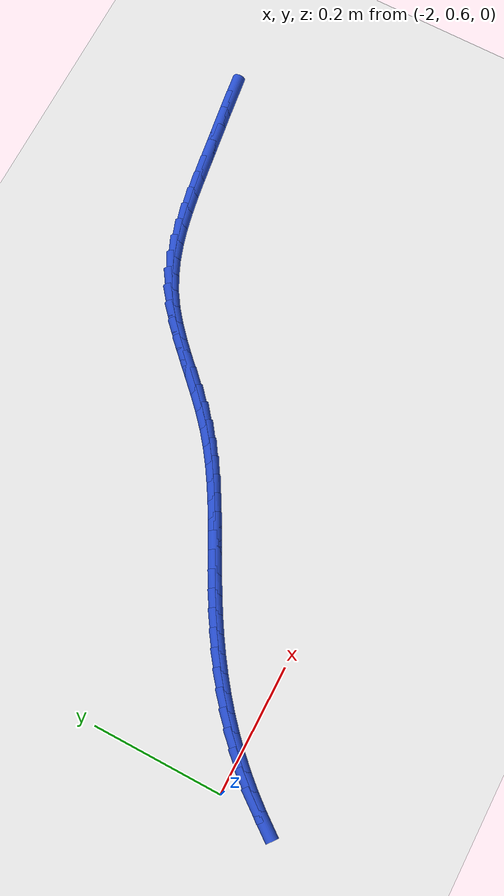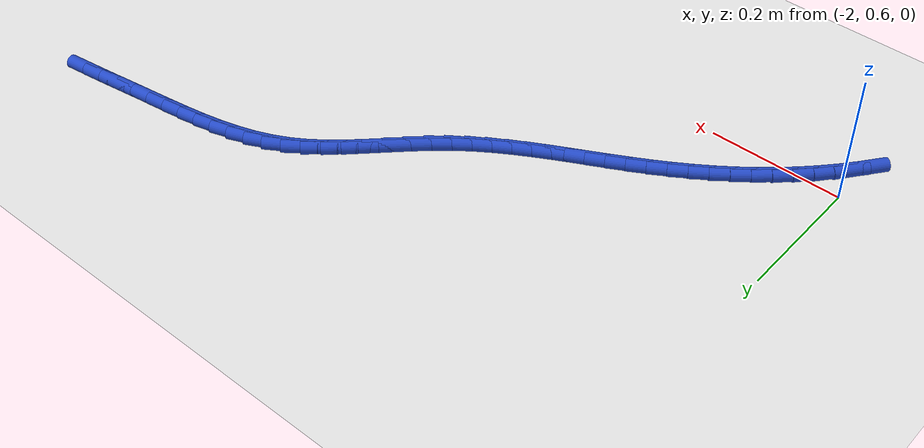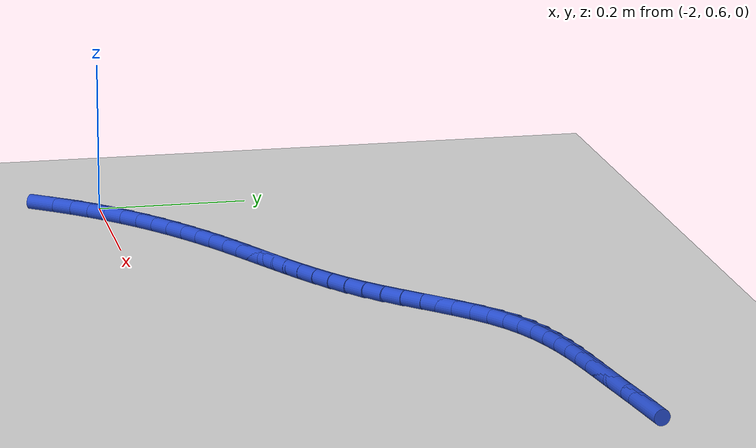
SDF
<sdf version="1.6">
 <world name="default">
  <model name="ground_plane">
   <static>1</static>
   <link name="link">
    <collision name="collision">
     <geometry><plane><normal>0 0 1</normal><size>100 100</size></plane></geometry>
     <surface><friction><ode><mu>100</mu><mu2>50</mu2></ode></friction></surface>
    </collision>
    <visual name="visual">
     <cast_shadows>0</cast_shadows>
     <geometry><plane><normal>0 0 1</normal><size>100 100</size></plane></geometry>
     <material>
      <script><uri>file://media/materials/scripts/gazebo.material</uri><name>Gazebo/WhiteGlow</name></script>
     </material>
    </visual>
   </link>
  </model>
  <model name="line">
   <link name="link_59">
    <pose>-1.0376944548410938 1.0877962690633303 0.01 0 1.57 0.1334954730307414</pose>
    <collision name="collision">
     <geometry><cylinder><radius>0.01</radius><length>0.08</length></cylinder></geometry>
    </collision>
    <visual name="visual">
     <material>
      <script><name>Gazebo/Blue</name><uri>file://media/materials/scripts/gazebo.material</uri></script>
     </material>
     <geometry><cylinder><radius>0.01</radius><length>0.08</length></cylinder></geometry>
    </visual>
   </link>
   <link name="link_60">
    <pose>-1.0684057628495305 1.0836719192465762 0.01 0 1.57 0.14330484486759168</pose>
    <collision name="collision">
     <geometry><cylinder><radius>0.01</radius><length>0.08</length></cylinder></geometry>
    </collision>
    <visual name="visual">
     <material>
      <script><name>Gazebo/Blue</name><uri>file://media/materials/scripts/gazebo.material</uri></script>
     </material>
     <geometry><cylinder><radius>0.01</radius><length>0.08</length></cylinder></geometry>
    </visual>
   </link>
   <link name="link_61">
    <pose>-1.0990560884617087 1.0792492625896357 0.01 0 1.57 0.14575799966463604</pose>
    <collision name="collision">
     <geometry><cylinder><radius>0.01</radius><length>0.08</length></cylinder></geometry>
    </collision>
    <visual name="visual">
     <material>
      <script><name>Gazebo/Blue</name><uri>file://media/materials/scripts/gazebo.material</uri></script>
     </material>
     <geometry><cylinder><radius>0.01</radius><length>0.08</length></cylinder></geometry>
    </visual>
   </link>
   <link name="link_62">
    <pose>-1.1294826973099303 1.0747826645088026 0.01 0 1.57 0.14203251685983956</pose>
    <collision name="collision">
     <geometry><cylinder><radius>0.01</radius><length>0.08</length></cylinder></geometry>
    </collision>
    <visual name="visual">
     <material>
      <script><name>Gazebo/Blue</name><uri>file://media/materials/scripts/gazebo.material</uri></script>
     </material>
     <geometry><cylinder><radius>0.01</radius><length>0.08</length></cylinder></geometry>
    </visual>
   </link>
   <link name="link_63">
    <pose>-1.1595283705377428 1.070486272278852 0.01 0 1.57 0.14298898115756992</pose>
    <collision name="collision">
     <geometry><cylinder><radius>0.01</radius><length>0.08</length></cylinder></geometry>
    </collision>
    <visual name="visual">
     <material>
      <script><name>Gazebo/Blue</name><uri>file://media/materials/scripts/gazebo.material</uri></script>
     </material>
     <geometry><cylinder><radius>0.01</radius><length>0.08</length></cylinder></geometry>
    </visual>
   </link>
   <link name="link_64">
    <pose>-1.1890829248731665 1.0662312579347422 0.01 0 1.57 0.15460730312139717</pose>
    <collision name="collision">
     <geometry><cylinder><radius>0.01</radius><length>0.08</length></cylinder></geometry>
    </collision>
    <visual name="visual">
     <material>
      <script><name>Gazebo/Blue</name><uri>file://media/materials/scripts/gazebo.material</uri></script>
     </material>
     <geometry><cylinder><radius>0.01</radius><length>0.08</length></cylinder></geometry>
    </visual>
   </link>
   <link name="link_65">
    <pose>-1.2180599903508489 1.0617151510523783 0.01 0 1.57 0.17756633891431411</pose>
    <collision name="collision">
     <geometry><cylinder><radius>0.01</radius><length>0.08</length></cylinder></geometry>
    </collision>
    <visual name="visual">
     <material>
      <script><name>Gazebo/Blue</name><uri>file://media/materials/scripts/gazebo.material</uri></script>
     </material>
     <geometry><cylinder><radius>0.01</radius><length>0.08</length></cylinder></geometry>
    </visual>
   </link>
   <link name="link_66">
    <pose>-1.246373382038112 1.0566341319818258 0.01 0 1.57 0.2125940894117049</pose>
    <collision name="collision">
     <geometry><cylinder><radius>0.01</radius><length>0.08</length></cylinder></geometry>
    </collision>
    <visual name="visual">
     <material>
      <script><name>Gazebo/Blue</name><uri>file://media/materials/scripts/gazebo.material</uri></script>
     </material>
     <geometry><cylinder><radius>0.01</radius><length>0.08</length></cylinder></geometry>
    </visual>
   </link>
   <link name="link_67">
    <pose>-1.2739369150022763 1.0506843810731485 0.01 0 1.57 0.26042674896760604</pose>
    <collision name="collision">
     <geometry><cylinder><radius>0.01</radius><length>0.08</length></cylinder></geometry>
    </collision>
    <visual name="visual">
     <material>
      <script><name>Gazebo/Blue</name><uri>file://media/materials/scripts/gazebo.material</uri></script>
     </material>
     <geometry><cylinder><radius>0.01</radius><length>0.08</length></cylinder></geometry>
    </visual>
   </link>
   <link name="link_68">
    <pose>-1.300664404310664 1.043562078676412 0.01 0 1.57 0.32164312924781424</pose>
    <collision name="collision">
     <geometry><cylinder><radius>0.01</radius><length>0.08</length></cylinder></geometry>
    </collision>
    <visual name="visual">
     <material>
      <script><name>Gazebo/Blue</name><uri>file://media/materials/scripts/gazebo.material</uri></script>
     </material>
     <geometry><cylinder><radius>0.01</radius><length>0.08</length></cylinder></geometry>
    </visual>
   </link>
   <link name="link_69">
    <pose>-1.326469665030597 1.034963405141681 0.01 0 1.57 0.3963997188025557</pose>
    <collision name="collision">
     <geometry><cylinder><radius>0.01</radius><length>0.08</length></cylinder></geometry>
    </collision>
    <visual name="visual">
     <material>
      <script><name>Gazebo/Blue</name><uri>file://media/materials/scripts/gazebo.material</uri></script>
     </material>
     <geometry><cylinder><radius>0.01</radius><length>0.08</length></cylinder></geometry>
    </visual>
   </link>
   <link name="link_70">
    <pose>-1.3512665122293972 1.0245845408190208 0.01 0 1.57 0.4840816189618638</pose>
    <collision name="collision">
     <geometry><cylinder><radius>0.01</radius><length>0.08</length></cylinder></geometry>
    </collision>
    <visual name="visual">
     <material>
      <script><name>Gazebo/Blue</name><uri>file://media/materials/scripts/gazebo.material</uri></script>
     </material>
     <geometry><cylinder><radius>0.01</radius><length>0.08</length></cylinder></geometry>
    </visual>
   </link>
   <link name="link_71">
    <pose>-1.3749687609743855 1.012121666058496 0.01 0 1.57 0.5807861027989323</pose>
    <collision name="collision">
     <geometry><cylinder><radius>0.01</radius><length>0.08</length></cylinder></geometry>
    </collision>
    <visual name="visual">
     <material>
      <script><name>Gazebo/Blue</name><uri>file://media/materials/scripts/gazebo.material</uri></script>
     </material>
     <geometry><cylinder><radius>0.01</radius><length>0.08</length></cylinder></geometry>
    </visual>
   </link>
   <link name="link_72">
    <pose>-1.39751430096481 0.9973251958567998 0.01 0 1.57 0.6645909405233154</pose>
    <collision name="collision">
     <geometry><cylinder><radius>0.01</radius><length>0.08</length></cylinder></geometry>
    </collision>
    <visual name="visual">
     <material>
      <script><name>Gazebo/Blue</name><uri>file://media/materials/scripts/gazebo.material</uri></script>
     </material>
     <geometry><cylinder><radius>0.01</radius><length>0.08</length></cylinder></geometry>
    </visual>
   </link>
   <link name="link_73">
    <pose>-1.4190618301741929 0.9804429758157717 0.01 0 1.57 0.7250321027307001</pose>
    <collision name="collision">
     <geometry><cylinder><radius>0.01</radius><length>0.08</length></cylinder></geometry>
    </collision>
    <visual name="visual">
     <material>
      <script><name>Gazebo/Blue</name><uri>file://media/materials/scripts/gazebo.material</uri></script>
     </material>
     <geometry><cylinder><radius>0.01</radius><length>0.08</length></cylinder></geometry>
    </visual>
   </link>
   <link name="link_74">
    <pose>-1.4398887000804155 0.9619901507798673 0.01 0 1.57 0.7633668413979282</pose>
    <collision name="collision">
     <geometry><cylinder><radius>0.01</radius><length>0.08</length></cylinder></geometry>
    </collision>
    <visual name="visual">
     <material>
      <script><name>Gazebo/Blue</name><uri>file://media/materials/scripts/gazebo.material</uri></script>
     </material>
     <geometry><cylinder><radius>0.01</radius><length>0.08</length></cylinder></geometry>
    </visual>
   </link>
   <link name="link_75">
    <pose>-1.460273400890601 0.9424844308904174 0.01 0 1.57 0.7809245543680977</pose>
    <collision name="collision">
     <geometry><cylinder><radius>0.01</radius><length>0.08</length></cylinder></geometry>
    </collision>
    <visual name="visual">
     <material>
      <script><name>Gazebo/Blue</name><uri>file://media/materials/scripts/gazebo.material</uri></script>
     </material>
     <geometry><cylinder><radius>0.01</radius><length>0.08</length></cylinder></geometry>
    </visual>
   </link>
   <link name="link_76">
    <pose>-1.4804944228118742 0.9224435262887514 0.01 0 1.57 0.7785296125036536</pose>
    <collision name="collision">
     <geometry><cylinder><radius>0.01</radius><length>0.08</length></cylinder></geometry>
    </collision>
    <visual name="visual">
     <material>
      <script><name>Gazebo/Blue</name><uri>file://media/materials/scripts/gazebo.material</uri></script>
     </material>
     <geometry><cylinder><radius>0.01</radius><length>0.08</length></cylinder></geometry>
    </visual>
   </link>
   <link name="link_77">
    <pose>-1.5008302560513567 0.9023851471161988 0.01 0 1.57 0.7563403165326268</pose>
    <collision name="collision">
     <geometry><cylinder><radius>0.01</radius><length>0.08</length></cylinder></geometry>
    </collision>
    <visual name="visual">
     <material>
      <script><name>Gazebo/Blue</name><uri>file://media/materials/scripts/gazebo.material</uri></script>
     </material>
     <geometry><cylinder><radius>0.01</radius><length>0.08</length></cylinder></geometry>
    </visual>
   </link>
   <link name="link_78">
    <pose>-1.5215593908161733 0.882827003514089 0.01 0 1.57 0.7139247877903906</pose>
    <collision name="collision">
     <geometry><cylinder><radius>0.01</radius><length>0.08</length></cylinder></geometry>
    </collision>
    <visual name="visual">
     <material>
      <script><name>Gazebo/Blue</name><uri>file://media/materials/scripts/gazebo.material</uri></script>
     </material>
     <geometry><cylinder><radius>0.01</radius><length>0.08</length></cylinder></geometry>
    </visual>
   </link>
   <link name="link_79">
    <pose>-1.5429599202045285 0.8642860946094303 0.01 0 1.57 0.6583734830817721</pose>
    <collision name="collision">
     <geometry><cylinder><radius>0.01</radius><length>0.08</length></cylinder></geometry>
    </collision>
    <visual name="visual">
     <material>
      <script><name>Gazebo/Blue</name><uri>file://media/materials/scripts/gazebo.material</uri></script>
     </material>
     <geometry><cylinder><radius>0.01</radius><length>0.08</length></cylinder></geometry>
    </visual>
   </link>
   <link name="link_80">
    <pose>-1.565200300263476 0.847083116928187 0.01 0 1.57 0.6082113104159013</pose>
    <collision name="collision">
     <geometry><cylinder><radius>0.01</radius><length>0.08</length></cylinder></geometry>
    </collision>
    <visual name="visual">
     <material>
      <script><name>Gazebo/Blue</name><uri>file://media/materials/scripts/gazebo.material</uri></script>
     </material>
     <geometry><cylinder><radius>0.01</radius><length>0.08</length></cylinder></geometry>
    </visual>
   </link>
   <link name="link_81">
    <pose>-1.5881905058168513 0.8310759623522161 0.01 0 1.57 0.5665418743031984</pose>
    <collision name="collision">
     <geometry><cylinder><radius>0.01</radius><length>0.08</length></cylinder></geometry>
    </collision>
    <visual name="visual">
     <material>
      <script><name>Gazebo/Blue</name><uri>file://media/materials/scripts/gazebo.material</uri></script>
     </material>
     <geometry><cylinder><radius>0.01</radius><length>0.08</length></cylinder></geometry>
    </visual>
   </link>
   <link name="link_82">
    <pose>-1.6118032823021373 0.8160558644092963 0.01 0 1.57 0.5335887879607111</pose>
    <collision name="collision">
     <geometry><cylinder><radius>0.01</radius><length>0.08</length></cylinder></geometry>
    </collision>
    <visual name="visual">
     <material>
      <script><name>Gazebo/Blue</name><uri>file://media/materials/scripts/gazebo.material</uri></script>
     </material>
     <geometry><cylinder><radius>0.01</radius><length>0.08</length></cylinder></geometry>
    </visual>
   </link>
   <link name="link_83">
    <pose>-1.6359113751568182 0.8018140566272048 0.01 0 1.57 0.5094189261070686</pose>
    <collision name="collision">
     <geometry><cylinder><radius>0.01</radius><length>0.08</length></cylinder></geometry>
    </collision>
    <visual name="visual">
     <material>
      <script><name>Gazebo/Blue</name><uri>file://media/materials/scripts/gazebo.material</uri></script>
     </material>
     <geometry><cylinder><radius>0.01</radius><length>0.08</length></cylinder></geometry>
    </visual>
   </link>
   <link name="link_84">
    <pose>-1.66038752981838 0.7881417725337206 0.01 0 1.57 0.4940164376076443</pose>
    <collision name="collision">
     <geometry><cylinder><radius>0.01</radius><length>0.08</length></cylinder></geometry>
    </collision>
    <visual name="visual">
     <material>
      <script><name>Gazebo/Blue</name><uri>file://media/materials/scripts/gazebo.material</uri></script>
     </material>
     <geometry><cylinder><radius>0.01</radius><length>0.08</length></cylinder></geometry>
    </visual>
   </link>
   <link name="link_85">
    <pose>-1.6851044917243057 0.7748302456566213 0.01 0 1.57 0.4873385638721867</pose>
    <collision name="collision">
     <geometry><cylinder><radius>0.01</radius><length>0.08</length></cylinder></geometry>
    </collision>
    <visual name="visual">
     <material>
      <script><name>Gazebo/Blue</name><uri>file://media/materials/scripts/gazebo.material</uri></script>
     </material>
     <geometry><cylinder><radius>0.01</radius><length>0.08</length></cylinder></geometry>
    </visual>
   </link>
   <link name="link_86">
    <pose>-1.7099350063120788 0.7616707095236851 0.01 0 1.57 0.4893509785444931</pose>
    <collision name="collision">
     <geometry><cylinder><radius>0.01</radius><length>0.08</length></cylinder></geometry>
    </collision>
    <visual name="visual">
     <material>
      <script><name>Gazebo/Blue</name><uri>file://media/materials/scripts/gazebo.material</uri></script>
     </material>
     <geometry><cylinder><radius>0.01</radius><length>0.08</length></cylinder></geometry>
    </visual>
   </link>
   <link name="link_87">
    <pose>-1.7347518190191844 0.7484543976626903 0.01 0 1.57 0.5000428308767667</pose>
    <collision name="collision">
     <geometry><cylinder><radius>0.01</radius><length>0.08</length></cylinder></geometry>
    </collision>
    <visual name="visual">
     <material>
      <script><name>Gazebo/Blue</name><uri>file://media/materials/scripts/gazebo.material</uri></script>
     </material>
     <geometry><cylinder><radius>0.01</radius><length>0.08</length></cylinder></geometry>
    </visual>
   </link>
   <link name="link_88">
    <pose>-1.7594276752831066 0.734972543601415 0.01 0 1.57 0.5193824767309676</pose>
    <collision name="collision">
     <geometry><cylinder><radius>0.01</radius><length>0.08</length></cylinder></geometry>
    </collision>
    <visual name="visual">
     <material>
      <script><name>Gazebo/Blue</name><uri>file://media/materials/scripts/gazebo.material</uri></script>
     </material>
     <geometry><cylinder><radius>0.01</radius><length>0.08</length></cylinder></geometry>
    </visual>
   </link>
   <link name="link_89">
    <pose>-1.78383571410854 0.7210174388630552 0.01 0 1.57 0.5450853156954637</pose>
    <collision name="collision">
     <geometry><cylinder><radius>0.01</radius><length>0.08</length></cylinder></geometry>
    </collision>
    <visual name="visual">
     <material>
      <script><name>Gazebo/Blue</name><uri>file://media/materials/scripts/gazebo.material</uri></script>
     </material>
     <geometry><cylinder><radius>0.01</radius><length>0.08</length></cylinder></geometry>
    </visual>
   </link>
   <link name="link_90">
    <pose>-1.8078719125217473 0.7064427686071344 0.01 0 1.57 0.5736780438581209</pose>
    <collision name="collision">
     <geometry><cylinder><radius>0.01</radius><length>0.08</length></cylinder></geometry>
    </collision>
    <visual name="visual">
     <material>
      <script><name>Gazebo/Blue</name><uri>file://media/materials/scripts/gazebo.material</uri></script>
     </material>
     <geometry><cylinder><radius>0.01</radius><length>0.08</length></cylinder></geometry>
    </visual>
   </link>
   <link name="link_91">
    <pose>-1.8314672073428457 0.6911961976254953 0.01 0 1.57 0.604919640788983</pose>
    <collision name="collision">
     <geometry><cylinder><radius>0.01</radius><length>0.08</length></cylinder></geometry>
    </collision>
    <visual name="visual">
     <material>
      <script><name>Gazebo/Blue</name><uri>file://media/materials/scripts/gazebo.material</uri></script>
     </material>
     <geometry><cylinder><radius>0.01</radius><length>0.08</length></cylinder></geometry>
    </visual>
   </link>
   <link name="link_92">
    <pose>-1.8545554919399216 0.6752333385626538 0.01 0 1.57 0.6388562066959235</pose>
    <collision name="collision">
     <geometry><cylinder><radius>0.01</radius><length>0.08</length></cylinder></geometry>
    </collision>
    <visual name="visual">
     <material>
      <script><name>Gazebo/Blue</name><uri>file://media/materials/scripts/gazebo.material</uri></script>
     </material>
     <geometry><cylinder><radius>0.01</radius><length>0.08</length></cylinder></geometry>
    </visual>
   </link>
   <link name="link_93">
    <pose>-1.8770706596810611 0.6585098040631249 0.01 0 1.57 0.6755165076006285</pose>
    <collision name="collision">
     <geometry><cylinder><radius>0.01</radius><length>0.08</length></cylinder></geometry>
    </collision>
    <visual name="visual">
     <material>
      <script><name>Gazebo/Blue</name><uri>file://media/materials/scripts/gazebo.material</uri></script>
     </material>
     <geometry><cylinder><radius>0.01</radius><length>0.08</length></cylinder></geometry>
    </visual>
   </link>
   <link name="link_94">
    <pose>-1.8989466039343488 0.6409812067714242 0.01 0 1.57 0.7148986950571599</pose>
    <collision name="collision">
     <geometry><cylinder><radius>0.01</radius><length>0.08</length></cylinder></geometry>
    </collision>
    <visual name="visual">
     <material>
      <script><name>Gazebo/Blue</name><uri>file://media/materials/scripts/gazebo.material</uri></script>
     </material>
     <geometry><cylinder><radius>0.01</radius><length>0.08</length></cylinder></geometry>
    </visual>
   </link>
   <link name="link_95">
    <pose>-1.9201172896293586 0.622603303947651 0.01 0 1.57 0.7560971403130712</pose>
    <collision name="collision">
     <geometry><cylinder><radius>0.01</radius><length>0.08</length></cylinder></geometry>
    </collision>
    <visual name="visual">
     <material>
      <script><name>Gazebo/Blue</name><uri>file://media/materials/scripts/gazebo.material</uri></script>
     </material>
     <geometry><cylinder><radius>0.01</radius><length>0.08</length></cylinder></geometry>
    </visual>
   </link>
   <link name="link_96">
    <pose>-1.94052808471754 0.6033548967366082 0.01 0 1.57 0.797281574676467</pose>
    <collision name="collision">
     <geometry><cylinder><radius>0.01</radius><length>0.08</length></cylinder></geometry>
    </collision>
    <visual name="visual">
     <material>
      <script><name>Gazebo/Blue</name><uri>file://media/materials/scripts/gazebo.material</uri></script>
     </material>
     <geometry><cylinder><radius>0.01</radius><length>0.08</length></cylinder></geometry>
    </visual>
   </link>
   <link name="link_97">
    <pose>-1.9601481585913791 0.5832628856087918 0.01 0 1.57 0.8382699062775709</pose>
    <collision name="collision">
     <geometry><cylinder><radius>0.01</radius><length>0.08</length></cylinder></geometry>
    </collision>
    <visual name="visual">
     <material>
      <script><name>Gazebo/Blue</name><uri>file://media/materials/scripts/gazebo.material</uri></script>
     </material>
     <geometry><cylinder><radius>0.01</radius><length>0.08</length></cylinder></geometry>
    </visual>
   </link>
   <link name="link_98">
    <pose>-1.978949661363941 0.5623601946468629 0.01 0 1.57 0.8791133885800223</pose>
    <collision name="collision">
     <geometry><cylinder><radius>0.01</radius><length>0.08</length></cylinder></geometry>
    </collision>
    <visual name="visual">
     <material>
      <script><name>Gazebo/Blue</name><uri>file://media/materials/scripts/gazebo.material</uri></script>
     </material>
     <geometry><cylinder><radius>0.01</radius><length>0.08</length></cylinder></geometry>
    </visual>
   </link>
   <link name="link_99">
    <pose>-1.9969047431482894 0.5406797479334824 0.01 0 1.57 0.9198639503953323</pose>
    <collision name="collision">
     <geometry><cylinder><radius>0.01</radius><length>0.08</length></cylinder></geometry>
    </collision>
    <visual name="visual">
     <material>
      <script><name>Gazebo/Blue</name><uri>file://media/materials/scripts/gazebo.material</uri></script>
     </material>
     <geometry><cylinder><radius>0.01</radius><length>0.08</length></cylinder></geometry>
    </visual>
   </link>
  </model>
 </world>
</sdf>
